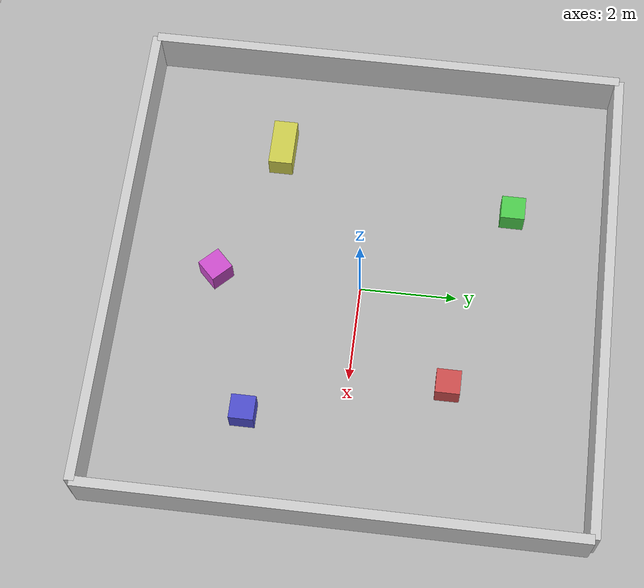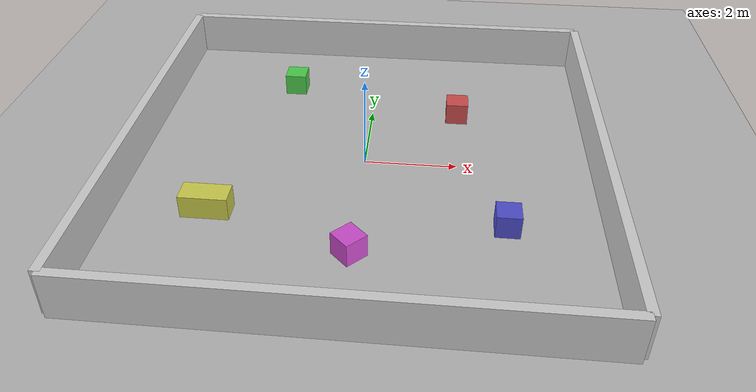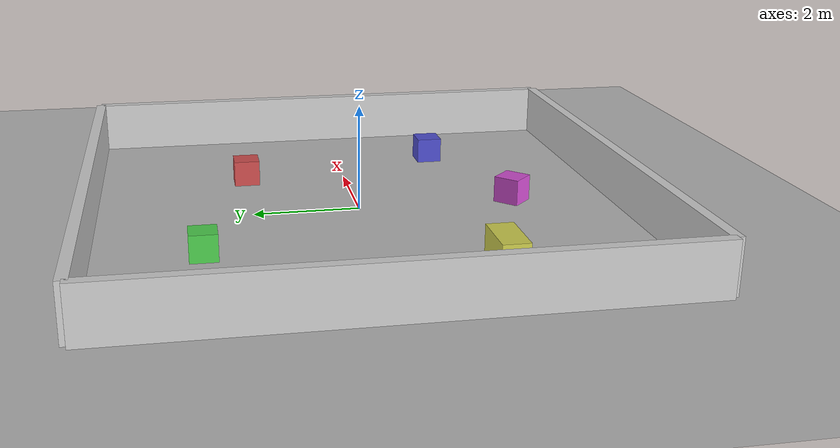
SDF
<?xml version="1.0" ?>
<sdf version="1.8">
  <world name="cuarto">

    <physics name="1ms" type="ignored">
      <max_step_size>0.001</max_step_size>
      <real_time_factor>1.0</real_time_factor>
    </physics>

    <plugin filename="gz-sim-physics-system" name="gz::sim::systems::Physics"/>
    <plugin filename="gz-sim-user-commands-system" name="gz::sim::systems::UserCommands"/>
    <plugin filename="gz-sim-scene-broadcaster-system" name="gz::sim::systems::SceneBroadcaster"/>
    <plugin filename="gz-sim-contact-system" name="gz::sim::systems::Contact"/>

    <light name="sun" type="directional">
      <cast_shadows>true</cast_shadows>
      <pose>0 0 10 0 0 0</pose>
      <diffuse>1 1 1 1</diffuse>
      <specular>0.5 0.5 0.5 1</specular>
      <direction>0 0 -1</direction>
      <attenuation>
        <range>100</range>
        <constant>0.9</constant>
        <linear>0.01</linear>
        <quadratic>0.001</quadratic>
      </attenuation>
    </light>

    <light name="ambient_light" type="point">
      <pose>0 0 5 0 0 0</pose>
      <diffuse>0.8 0.8 0.8 1</diffuse>
      <specular>0.2 0.2 0.2 1</specular>
      <attenuation>
        <range>20</range>
        <constant>0.5</constant>
        <linear>0.01</linear>
        <quadratic>0.001</quadratic>
      </attenuation>
    </light>

    <!-- Piso -->
    <model name="ground_plane">
      <static>true</static>
      <link name="link">
        <collision name="collision">
          <geometry><plane><normal>0 0 1</normal><size>20 20</size></plane></geometry>
        </collision>
        <visual name="visual">
          <geometry><plane><normal>0 0 1</normal><size>20 20</size></plane></geometry>
          <material>
            <ambient>0.7 0.7 0.7 1</ambient>
            <diffuse>0.7 0.7 0.7 1</diffuse>
          </material>
        </visual>
      </link>
    </model>

    <!-- Pared Norte -->
    <model name="pared_norte">
      <static>true</static>
      <pose>0 5 0.5 0 0 0</pose>
      <link name="link">
        <collision name="collision">
          <geometry><box><size>10 0.2 1</size></box></geometry>
        </collision>
        <visual name="visual">
          <geometry><box><size>10 0.2 1</size></box></geometry>
          <material><ambient>0.8 0.8 0.8 1</ambient><diffuse>0.8 0.8 0.8 1</diffuse></material>
        </visual>
      </link>
    </model>

    <!-- Pared Sur -->
    <model name="pared_sur">
      <static>true</static>
      <pose>0 -5 0.5 0 0 0</pose>
      <link name="link">
        <collision name="collision">
          <geometry><box><size>10 0.2 1</size></box></geometry>
        </collision>
        <visual name="visual">
          <geometry><box><size>10 0.2 1</size></box></geometry>
          <material><ambient>0.8 0.8 0.8 1</ambient><diffuse>0.8 0.8 0.8 1</diffuse></material>
        </visual>
      </link>
    </model>

    <!-- Pared Este -->
    <model name="pared_este">
      <static>true</static>
      <pose>5 0 0.5 0 0 0</pose>
      <link name="link">
        <collision name="collision">
          <geometry><box><size>0.2 10 1</size></box></geometry>
        </collision>
        <visual name="visual">
          <geometry><box><size>0.2 10 1</size></box></geometry>
          <material><ambient>0.8 0.8 0.8 1</ambient><diffuse>0.8 0.8 0.8 1</diffuse></material>
        </visual>
      </link>
    </model>

    <!-- Pared Oeste -->
    <model name="pared_oeste">
      <static>true</static>
      <pose>-5 0 0.5 0 0 0</pose>
      <link name="link">
        <collision name="collision">
          <geometry><box><size>0.2 10 1</size></box></geometry>
        </collision>
        <visual name="visual">
          <geometry><box><size>0.2 10 1</size></box></geometry>
          <material><ambient>0.8 0.8 0.8 1</ambient><diffuse>0.8 0.8 0.8 1</diffuse></material>
        </visual>
      </link>
    </model>

    <!-- Cajas -->
    <model name="caja1">
      <static>true</static>
      <pose>2 2 0.25 0 0 0</pose>
      <link name="link">
        <collision name="collision">
          <geometry><box><size>0.5 0.5 0.5</size></box></geometry>
        </collision>
        <visual name="visual">
          <geometry><box><size>0.5 0.5 0.5</size></box></geometry>
          <material><ambient>0.8 0.3 0.3 1</ambient><diffuse>0.8 0.3 0.3 1</diffuse></material>
        </visual>
      </link>
    </model>

    <model name="caja2">
      <static>true</static>
      <pose>-2 3 0.25 0 0 0</pose>
      <link name="link">
        <collision name="collision">
          <geometry><box><size>0.5 0.5 0.5</size></box></geometry>
        </collision>
        <visual name="visual">
          <geometry><box><size>0.5 0.5 0.5</size></box></geometry>
          <material><ambient>0.3 0.8 0.3 1</ambient><diffuse>0.3 0.8 0.3 1</diffuse></material>
        </visual>
      </link>
    </model>

    <model name="caja3">
      <static>true</static>
      <pose>3 -2 0.25 0 0 0</pose>
      <link name="link">
        <collision name="collision">
          <geometry><box><size>0.5 0.5 0.5</size></box></geometry>
        </collision>
        <visual name="visual">
          <geometry><box><size>0.5 0.5 0.5</size></box></geometry>
          <material><ambient>0.3 0.3 0.8 1</ambient><diffuse>0.3 0.3 0.8 1</diffuse></material>
        </visual>
      </link>
    </model>

    <model name="caja4">
      <static>true</static>
      <pose>-3 -2 0.25 0 0 0</pose>
      <link name="link">
        <collision name="collision">
          <geometry><box><size>1 0.5 0.5</size></box></geometry>
        </collision>
        <visual name="visual">
          <geometry><box><size>1 0.5 0.5</size></box></geometry>
          <material><ambient>0.8 0.8 0.3 1</ambient><diffuse>0.8 0.8 0.3 1</diffuse></material>
        </visual>
      </link>
    </model>

    <model name="caja5">
      <static>true</static>
      <pose>0 -3 0.25 0 0 0.785</pose>
      <link name="link">
        <collision name="collision">
          <geometry><box><size>0.5 0.5 0.5</size></box></geometry>
        </collision>
        <visual name="visual">
          <geometry><box><size>0.5 0.5 0.5</size></box></geometry>
          <material><ambient>0.8 0.3 0.8 1</ambient><diffuse>0.8 0.3 0.8 1</diffuse></material>
        </visual>
      </link>
    </model>

  </world>
</sdf>
